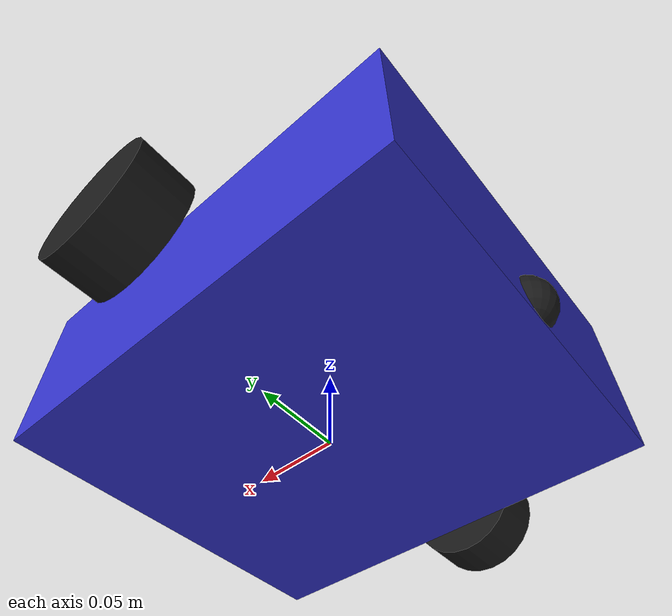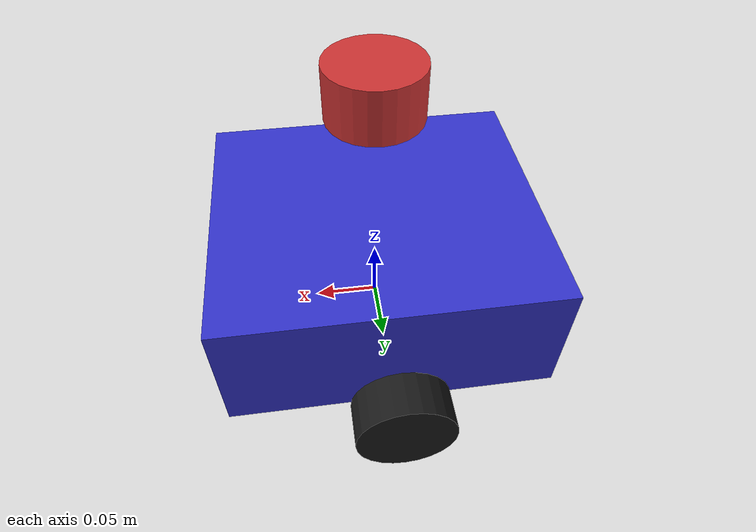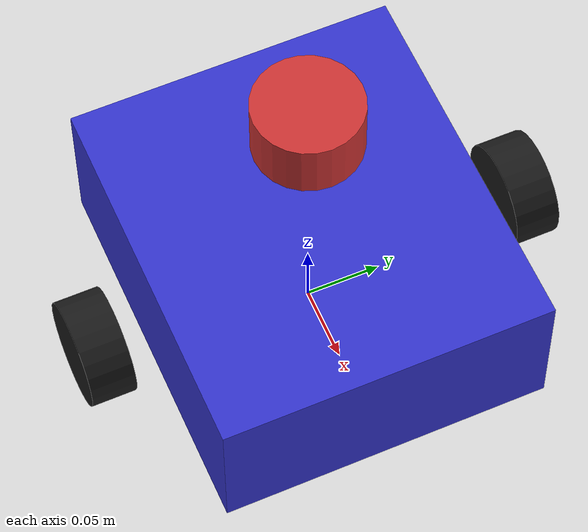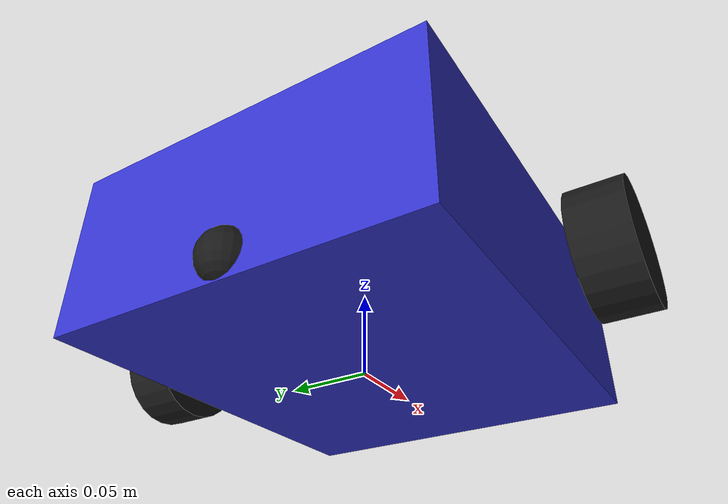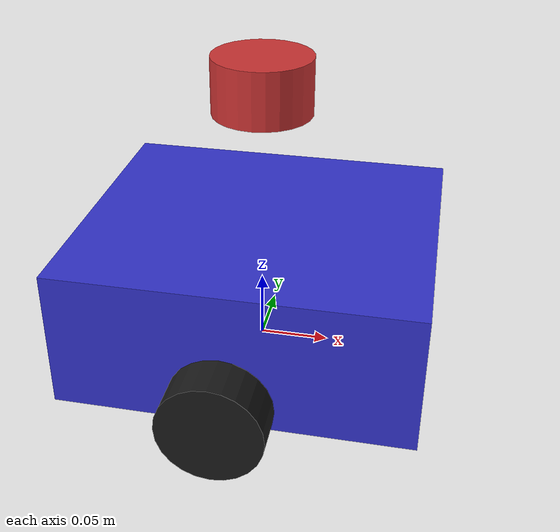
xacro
<?xml version="1.0" encoding="utf-8"?>
<robot name="differential_robot" xmlns:xacro="http://ros.org/wiki/xacro">

  <!-- 常量定义 -->
  <xacro:property name="M_PI" value="3.1415926535897931"/>

  <!-- 底盘参数 -->
  <xacro:property name="base_mass" value="2.0"/>
  <xacro:property name="base_length" value="0.25"/>
  <xacro:property name="base_width" value="0.22"/>
  <xacro:property name="base_height" value="0.1"/>
  <xacro:property name="base_link_height" value="${base_height/2}"/>  <!-- base_link 位于车体中心，高于地面 5cm -->

  <!-- 轮子参数 -->
  <xacro:property name="wheel_radius" value="0.035"/>  <!-- 直径7cm，半径3.5cm -->
  <xacro:property name="wheel_width" value="0.03"/>
  <xacro:property name="wheel_mass" value="0.15"/>
  <xacro:property name="track_width" value="0.2948"/>  <!-- 左右轮中心距 294.8mm -->

  <!-- 万向轮参数 -->
  <xacro:property name="caster_radius" value="0.015"/>
  <xacro:property name="caster_mass" value="0.05"/>
  <xacro:property name="caster_x" value="-0.12"/>     <!-- 后方支撑万向轮：x<0 -->

  <xacro:property name="imu_x" value="-0.1357881"/>
  <xacro:property name="imu_y" value="0.0051315"/>
  <xacro:property name="imu_z" value="0.0907072"/>

  <!-- 雷达参数 -->
  <xacro:property name="laser_height" value="0.2"/>   <!-- 雷达高度20cm -->

  <!-- 惯性矩阵宏 -->
  <xacro:macro name="cylinder_inertial" params="m r h">
    <inertial>
      <mass value="${m}"/>
      <inertia
        ixx="${m*(3*r*r+h*h)/12}"
        ixy="0"
        ixz="0"
        iyy="${m*(3*r*r+h*h)/12}"
        iyz="0"
        izz="${m*r*r/2}"/>
    </inertial>
  </xacro:macro>

  <xacro:macro name="box_inertial" params="m w h d">
    <inertial>
      <mass value="${m}"/>
      <inertia
        ixx="${m*(h*h+d*d)/12}"
        ixy="0"
        ixz="0"
        iyy="${m*(w*w+d*d)/12}"
        iyz="0"
        izz="${m*(w*w+h*h)/12}"/>
    </inertial>
  </xacro:macro>

  <xacro:macro name="sphere_inertial" params="m r">
    <inertial>
      <mass value="${m}"/>
      <inertia
        ixx="${2*m*r*r/5}"
        ixy="0"
        ixz="0"
        iyy="${2*m*r*r/5}"
        iyz="0"
        izz="${2*m*r*r/5}"/>
    </inertial>
  </xacro:macro>

  <!-- 颜色定义 -->
  <material name="black">
    <color rgba="0.1 0.1 0.1 1"/>
  </material>
  <material name="blue">
    <color rgba="0.2 0.2 0.8 1"/>
  </material>
  <material name="red">
    <color rgba="0.8 0.2 0.2 1"/>
  </material>

  <!-- 基础坐标系 base_footprint（地面接触点） -->
  <link name="base_footprint"/>

  <!-- base_link（底盘主体） -->
  <joint name="base_joint" type="fixed">
    <parent link="base_footprint"/>
    <child link="base_link"/>
    <origin xyz="0 0 ${base_link_height}" rpy="0 0 0"/>
  </joint>

  <link name="base_link">
    <xacro:box_inertial m="${base_mass}" w="${base_width}" h="${base_height}" d="${base_length}"/>
    <visual>
      <origin xyz="0 0 0" rpy="0 0 0"/>
      <geometry>
        <box size="${base_length} ${base_width} ${base_height}"/>
      </geometry>
      <material name="blue"/>
    </visual>
    <collision>
      <origin xyz="0 0 0" rpy="0 0 0"/>
      <geometry>
        <box size="${base_length} ${base_width} ${base_height}"/>
      </geometry>
    </collision>
  </link>

  <!-- 左驱动轮 -->
  <joint name="left_wheel_joint" type="continuous">
    <parent link="base_link"/>
    <child link="left_wheel"/>
    <origin xyz="0 ${track_width/2} ${wheel_radius-base_link_height}" rpy="${-M_PI/2} 0 0"/>
    <axis xyz="0 0 1"/>
  </joint>

  <link name="left_wheel">
    <xacro:cylinder_inertial m="${wheel_mass}" r="${wheel_radius}" h="${wheel_width}"/>
    <visual>
      <origin xyz="0 0 0" rpy="0 0 0"/>
      <geometry>
        <cylinder radius="${wheel_radius}" length="${wheel_width}"/>
      </geometry>
      <material name="black"/>
    </visual>
    <collision>
      <origin xyz="0 0 0" rpy="0 0 0"/>
      <geometry>
        <cylinder radius="${wheel_radius}" length="${wheel_width}"/>
      </geometry>
    </collision>
  </link>

  <!-- 右驱动轮 -->
  <joint name="right_wheel_joint" type="continuous">
    <parent link="base_link"/>
    <child link="right_wheel"/>
    <origin xyz="0 ${-track_width/2} ${wheel_radius-base_link_height}" rpy="${-M_PI/2} 0 0"/>
    <axis xyz="0 0 1"/>
  </joint>

  <link name="right_wheel">
    <xacro:cylinder_inertial m="${wheel_mass}" r="${wheel_radius}" h="${wheel_width}"/>
    <visual>
      <origin xyz="0 0 0" rpy="0 0 0"/>
      <geometry>
        <cylinder radius="${wheel_radius}" length="${wheel_width}"/>
      </geometry>
      <material name="black"/>
    </visual>
    <collision>
      <origin xyz="0 0 0" rpy="0 0 0"/>
      <geometry>
        <cylinder radius="${wheel_radius}" length="${wheel_width}"/>
      </geometry>
    </collision>
  </link>

  <!-- 后万向轮（辅助支撑轮） -->
  <joint name="caster_wheel_joint" type="fixed">
    <parent link="base_link"/>
    <child link="caster_wheel"/>
    <origin xyz="${caster_x} 0 ${caster_radius-base_link_height}" rpy="0 0 0"/>
  </joint>

  <link name="caster_wheel">
    <xacro:sphere_inertial m="${caster_mass}" r="${caster_radius}"/>
    <visual>
      <origin xyz="0 0 0" rpy="0 0 0"/>
      <geometry>
        <sphere radius="${caster_radius}"/>
      </geometry>
      <material name="black"/>
    </visual>
    <collision>
      <origin xyz="0 0 0" rpy="0 0 0"/>
      <geometry>
        <sphere radius="${caster_radius}"/>
      </geometry>
    </collision>
  </link>

  <!-- 激光雷达（思岚C1） -->
  <joint name="laser_joint" type="fixed">
    <parent link="base_link"/>
    <child link="laser_link"/>
    <origin xyz="0 0 ${laser_height-base_link_height}" rpy="0 0 0"/>
  </joint>

  <link name="laser_link">
    <inertial>
      <mass value="0.1"/>
      <inertia ixx="0.0001" ixy="0" ixz="0" iyy="0.0001" iyz="0" izz="0.0001"/>
    </inertial>
    <visual>
      <origin xyz="0 0 0" rpy="0 0 0"/>
      <geometry>
        <cylinder radius="0.035" length="0.04"/>
      </geometry>
      <material name="red"/>
    </visual>
    <collision>
      <origin xyz="0 0 0" rpy="0 0 0"/>
      <geometry>
        <cylinder radius="0.035" length="0.04"/>
      </geometry>
    </collision>
  </link>

  <!-- IMU frame -->
  <joint name="imu_joint" type="fixed">
    <parent link="base_link"/>
    <child link="imu_link"/>
    <origin xyz="${imu_x} ${imu_y} ${wheel_radius+imu_z-base_link_height}" rpy="${M_PI} 0 -${M_PI/2}"/>
  </joint>

  <link name="imu_link"/>

</robot>
